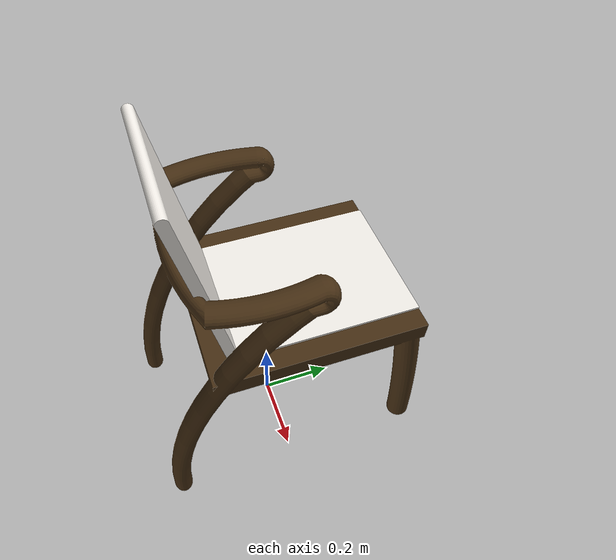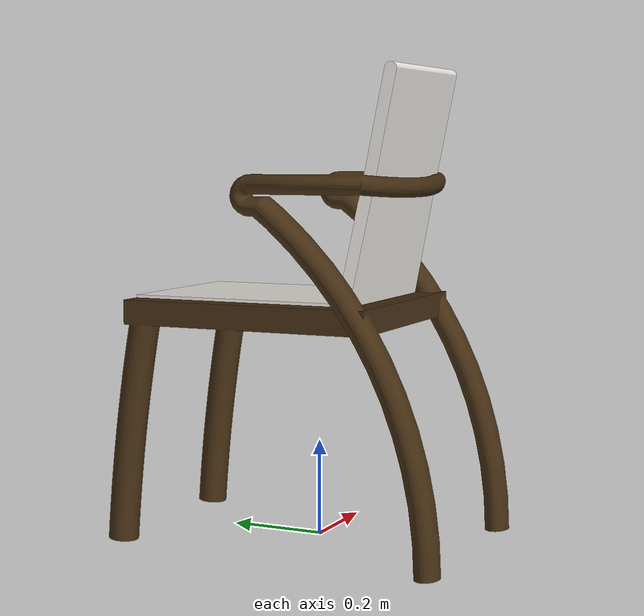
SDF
<?xml version="1.0" ?>
<sdf version="1.5">
  <model name="chair_modern_1">
    <link name="link">
      <pose>0 0 0 0 0 0</pose>
      <collision name="collision">
        <geometry>
          <mesh>
            <uri>model://chair_modern_1/meshes/model.dae</uri>
          </mesh>
        </geometry>
      </collision>
      <visual name="visual">
        <geometry>
          <mesh>
            <uri>model://chair_modern_1/meshes/model.dae</uri>
          </mesh>
        </geometry>
      </visual>
    </link>
    <static>1</static>
  </model>
</sdf>
